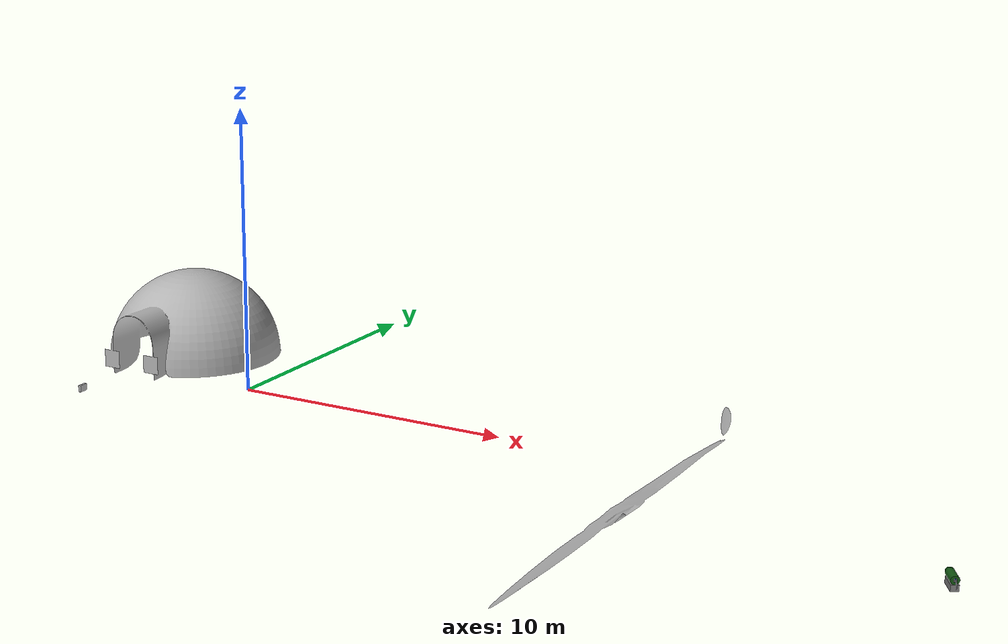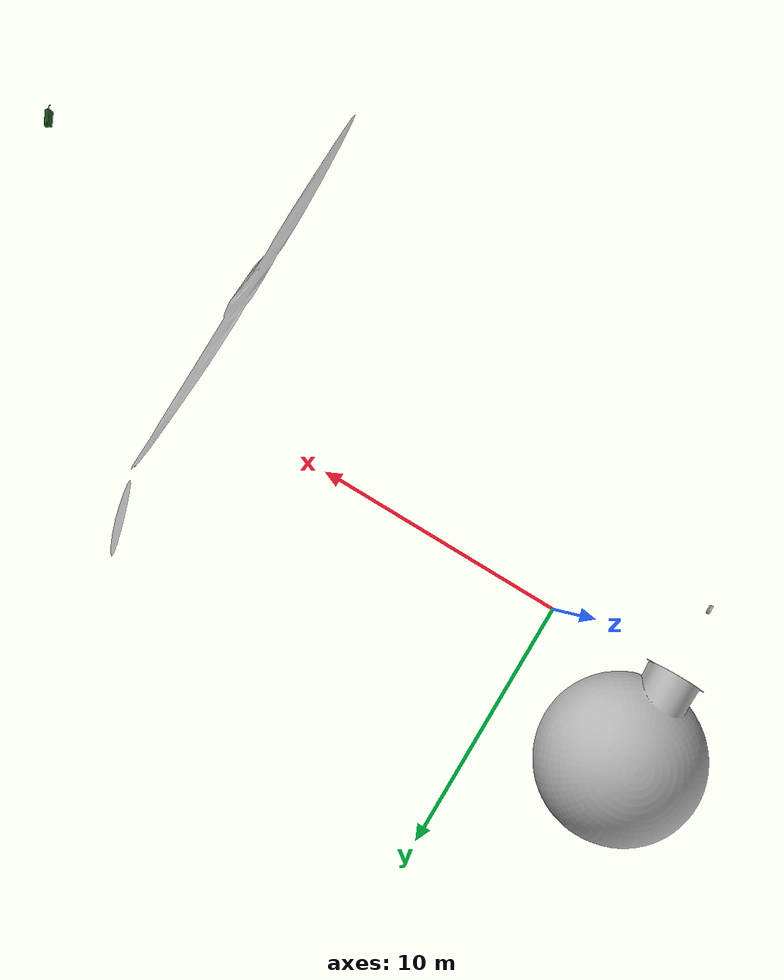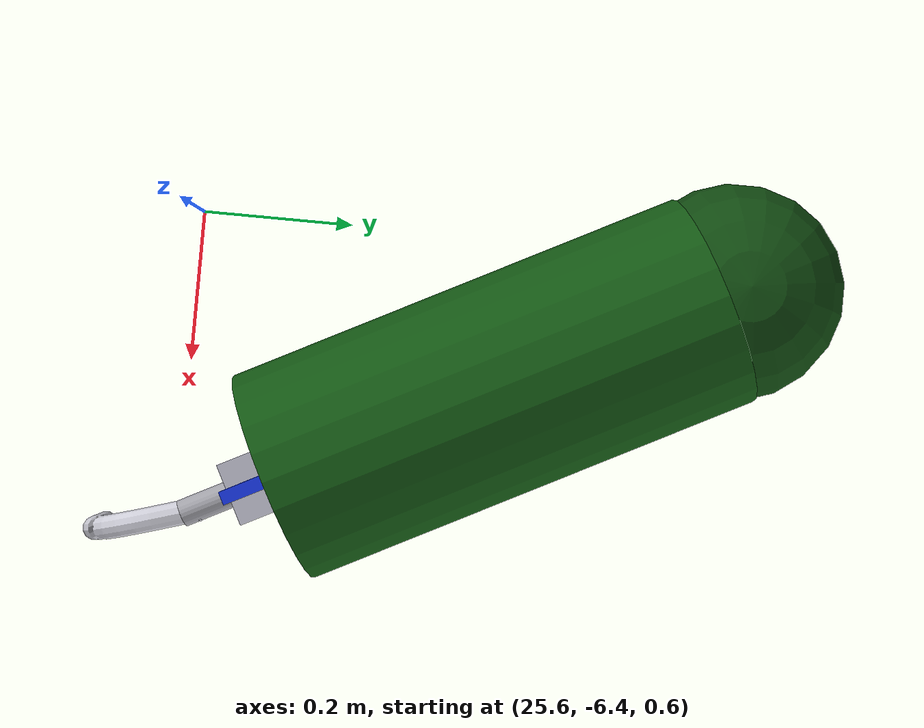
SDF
<sdf version="1.9">
 <world name="mars_world">
  <spherical_coordinates>
   <surface_model>EARTH_WGS84</surface_model>
   <world_frame_orientation>ENU</world_frame_orientation>
   <latitude_deg>39.8942</latitude_deg>
   <longitude_deg>32.7845</longitude_deg>
   <elevation>900.0</elevation>
   <heading_deg>0</heading_deg>
  </spherical_coordinates>
  <physics name="1ms" type="dart">
   <max_step_size>0.001</max_step_size>
   <real_time_factor>1.0</real_time_factor>
   <dart><collision_detector>bullet</collision_detector></dart>
  </physics>
  <plugin filename="gz-sim-physics-system" name="gz::sim::systems::Physics"/>
  <plugin filename="gz-sim-user-commands-system" name="gz::sim::systems::UserCommands"/>
  <plugin filename="gz-sim-sensors-system" name="gz::sim::systems::Sensors">
   <render_engine>ogre2</render_engine>
  </plugin>
  <plugin filename="gz-sim-scene-broadcaster-system" name="gz::sim::systems::SceneBroadcaster"/>
  <plugin filename="gz-sim-imu-system" name="gz::sim::systems::Imu"/>
  <plugin filename="gz-sim-contact-system" name="gz::sim::systems::Contact"/>
  <plugin filename="gz-sim-navsat-system" name="gz::sim::systems::NavSat"/>
  <light type="directional" name="sun">
   <pose>0 0 10 0 0 0</pose>
   <diffuse>1 1 1 1</diffuse>
   <specular>0.5 0.5 0.5 1</specular>
   <attenuation>
    <range>1000</range>
    <constant>0.9</constant>
    <linear>0.01</linear>
    <quadratic>0.001</quadratic>
   </attenuation>
   <direction>-0.5 0.1 -0.9</direction>
  </light>
  <scene>
   <ambient>0.01 0.01 0.01 1</ambient>
   <background>0.0 0.0 0.0 1</background>
   <shadows>true</shadows>
   <origin_visual>false</origin_visual>
   <grid>false</grid>
  </scene>
  <model name="mars_base_dome">
   <static>true</static>
   <pose>-5 3.5 -0.25 1.570795 0 -1.570795</pose>
   <link name="dome_link">
    <visual name="dome_visual">
     <geometry>
      <mesh><uri>../models/gale_crater_patch2/meshes/dome.obj</uri><scale>0.82 0.82 0.82</scale></mesh>
     </geometry>
    </visual>
    <collision name="dome_collision">
     <geometry>
      <mesh><uri>../models/gale_crater_patch2/meshes/dome.obj</uri><scale>0.82 0.82 0.82</scale></mesh>
     </geometry>
    </collision>
   </link>
  </model>
  <model name="Arc_emergency_kit">
   <static>true</static>
   <pose>-5 -3 0.13 1.5708 0 -1.570795</pose>
   <link name="kit_link">
    <visual name="kit_visual">
     <geometry>
      <mesh><uri>../models/gale_crater_patch2/meshes/Emergency_kit.obj</uri><scale>1 1 1</scale></mesh>
     </geometry>
    </visual>
    <collision name="kit_collision"><geometry><box><size>0.33 0.10 0.24</size></box></geometry></collision>
   </link>
  </model>
  <model name="arc_oxygen_tank_night_mission">
   <static>true</static>
   <pose>25.8 -6 0.7 0 0 -1.1</pose>
   <link name="support_base">
    <pose>0 0 0.09 0 0 0</pose>
    <visual name="visual_base">
     <geometry><box><size>0.55 0.22 0.18</size></box></geometry>
     <material>
      <ambient>0.45 0.45 0.45 1</ambient>
      <diffuse>0.50 0.50 0.50 1</diffuse>
      <specular>0.20 0.20 0.20 1</specular>
     </material>
    </visual>
    <collision name="collision_base"><geometry><box><size>0.55 0.22 0.18</size></box></geometry></collision>
   </link>
   <link name="tank_body">
    <pose>0 0 0.30 0 1.5708 0</pose>
    <visual name="visual_tank">
     <geometry><cylinder><radius>0.12</radius><length>0.52</length></cylinder></geometry>
     <material>
      <ambient>0.05 0.25 0.05 1</ambient>
      <diffuse>0.08 0.35 0.08 1</diffuse>
      <specular>0.05 0.10 0.05 1</specular>
      <emissive>0.01 0.06 0.01 1</emissive>
     </material>
    </visual>
    <collision name="collision_tank"><geometry><box><size>0.52 0.24 0.24</size></box></geometry></collision>
   </link>
   <joint name="joint_base_to_tank" type="fixed"><parent>support_base</parent><child>tank_body</child></joint>
   <link name="tank_endcap">
    <pose>-0.285 0 0.30 0 0 0</pose>
    <visual name="visual_endcap">
     <geometry><sphere><radius>0.12</radius></sphere></geometry>
     <material>
      <ambient>0.05 0.22 0.05 1</ambient>
      <diffuse>0.07 0.30 0.07 1</diffuse>
      <emissive>0.01 0.05 0.01 1</emissive>
     </material>
    </visual>
    <collision name="collision_endcap"><geometry><sphere><radius>0.12</radius></sphere></geometry></collision>
   </link>
   <joint name="joint_base_to_endcap" type="fixed">
    <parent>support_base</parent>
    <child>tank_endcap</child>
   </joint>
   <link name="valve_body">
    <pose>0.285 0 0.30 0 0 0</pose>
    <visual name="visual_valve_body">
     <geometry><box><size>0.05 0.07 0.07</size></box></geometry>
     <material>
      <ambient>0.60 0.60 0.65 1</ambient>
      <diffuse>0.70 0.70 0.75 1</diffuse>
      <specular>0.80 0.80 0.85 1</specular>
     </material>
    </visual>
    <collision name="collision_valve_body"><geometry><box><size>0.05 0.07 0.07</size></box></geometry></collision>
   </link>
   <joint name="joint_tank_to_valve" type="fixed"><parent>tank_body</parent><child>valve_body</child></joint>
   <link name="valve_handle">
    <pose>0.285 0 0.347 0 0 0</pose>
    <visual name="visual_valve_handle">
     <geometry><box><size>0.06 0.015 0.024</size></box></geometry>
     <material>
      <ambient>0.05 0.15 0.70 1</ambient>
      <diffuse>0.08 0.20 0.85 1</diffuse>
      <specular>0.10 0.20 0.50 1</specular>
     </material>
    </visual>
    <collision name="collision_valve_handle">
     <geometry><box><size>0.06 0.015 0.024</size></box></geometry>
    </collision>
   </link>
   <joint name="joint_valve_to_handle" type="revolute">
    <parent>valve_body</parent>
    <child>valve_handle</child>
    <axis>
     <xyz>0 0 1</xyz>
     <limit><lower>0</lower><upper>1.5708</upper><effort>5.0</effort><velocity>2.0</velocity></limit>
     <dynamics><damping>0.2</damping><friction>0.5</friction></dynamics>
    </axis>
   </joint>
   <link name="connection_nozzle">
    <pose>0.340 0 0.30 0 1.5708 0</pose>
    <visual name="visual_nozzle">
     <geometry><cylinder><radius>0.015</radius><length>0.060</length></cylinder></geometry>
     <material>
      <ambient>0.55 0.55 0.58 1</ambient>
      <diffuse>0.65 0.65 0.68 1</diffuse>
      <specular>0.85 0.85 0.90 1</specular>
     </material>
    </visual>
    <collision name="collision_nozzle">
     <geometry><cylinder><radius>0.015</radius><length>0.060</length></cylinder></geometry>
    </collision>
   </link>
   <joint name="joint_valve_to_nozzle" type="fixed">
    <parent>valve_body</parent>
    <child>connection_nozzle</child>
   </joint>
  </model>
  <include><uri>model://fuel_trail</uri></include>
  <model name="damaged_pipe">
   <static>true</static>
   <pose>26 -6.44 0.865 1.570759 0 0.294</pose>
   <link name="pipe_link">
    <inertial>
     <mass>0.20</mass>
     <inertia><ixx>0.001</ixx><iyy>0.001</iyy><izz>0.001</izz><ixy>0</ixy><ixz>0</ixz><iyz>0</iyz></inertia>
    </inertial>
    <visual name="pipe_visual">
     <geometry>
      <mesh><uri>../models/gale_crater_patch2/meshes/damaged_pipe.obj</uri><scale>1.35 1.35 1.35</scale></mesh>
     </geometry>
     <material>
      <ambient>0.68 0.68 0.72 1</ambient>
      <diffuse>0.82 0.82 0.86 1</diffuse>
      <specular>0.95 0.95 0.98 1</specular>
     </material>
    </visual>
    <collision name="pipe_collision"><geometry><box><size>0.12 0.12 0.12</size></box></geometry></collision>
   </link>
  </model>
 </world>
</sdf>

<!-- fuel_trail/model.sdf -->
<sdf version="1.9">
  <model name="fuel_trail">
    <static>true</static>
    <link name="link">
      <visual name="visual">
        <pose>0 0 0.01 1.57079632679 0 0</pose>
        <geometry>
          <mesh>
            <uri>model://gale_crater_patch2/meshes/fuel_trail.obj</uri>
          </mesh>
        </geometry>
      </visual>
    </link>
  </model>
</sdf>
